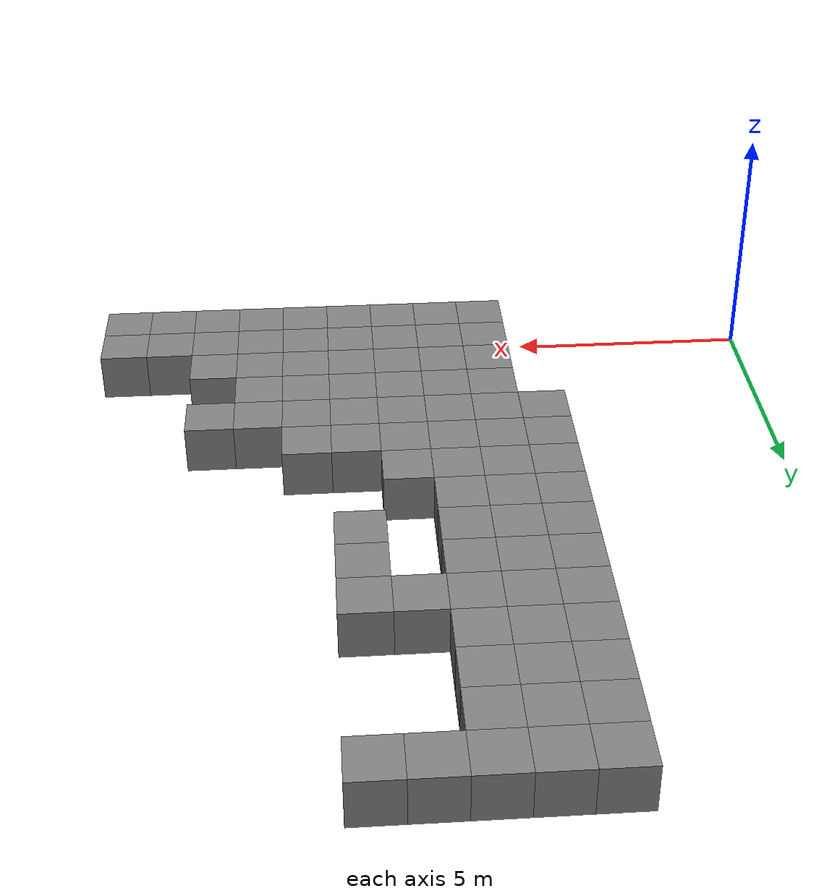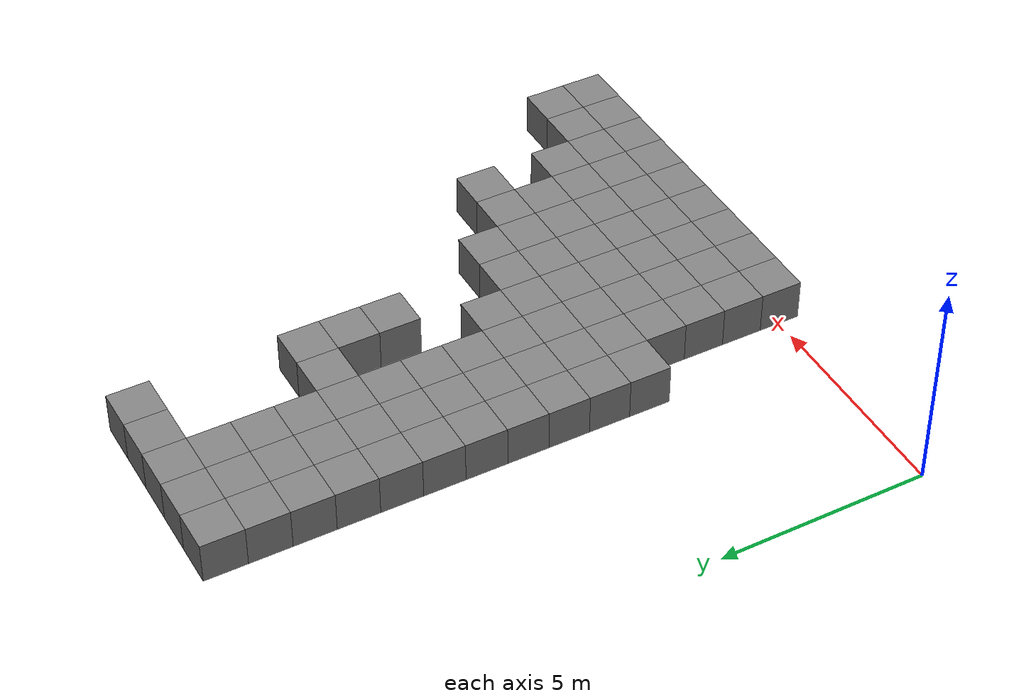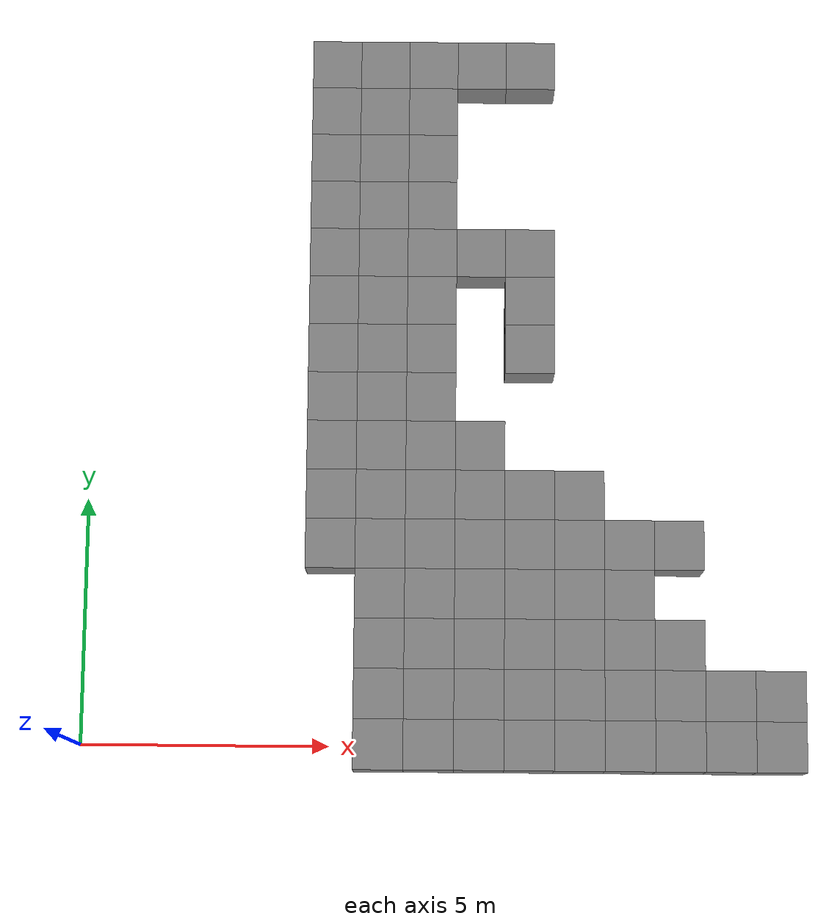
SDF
<sdf version="1.6">
 <world name="default">
  <model name="block_|5-4|">
   <static>true</static>
   <link name="link">
    <pose>5 4 0.5 0 0 0</pose>
    <collision name="collision"><geometry><box><size>1 1 1</size></box></geometry></collision>
    <visual name="visual">
     <geometry><box><size>1 1 1</size></box></geometry>
     <material><ambient>0.5 0.5 0.5 1</ambient></material>
    </visual>
   </link>
  </model>
  <model name="block_|5-5|">
   <static>true</static>
   <link name="link">
    <pose>5 5 0.5 0 0 0</pose>
    <collision name="collision"><geometry><box><size>1 1 1</size></box></geometry></collision>
    <visual name="visual">
     <geometry><box><size>1 1 1</size></box></geometry>
     <material><ambient>0.5 0.5 0.5 1</ambient></material>
    </visual>
   </link>
  </model>
  <model name="block_|5-6|">
   <static>true</static>
   <link name="link">
    <pose>5 6 0.5 0 0 0</pose>
    <collision name="collision"><geometry><box><size>1 1 1</size></box></geometry></collision>
    <visual name="visual">
     <geometry><box><size>1 1 1</size></box></geometry>
     <material><ambient>0.5 0.5 0.5 1</ambient></material>
    </visual>
   </link>
  </model>
  <model name="block_|5-7|">
   <static>true</static>
   <link name="link">
    <pose>5 7 0.5 0 0 0</pose>
    <collision name="collision"><geometry><box><size>1 1 1</size></box></geometry></collision>
    <visual name="visual">
     <geometry><box><size>1 1 1</size></box></geometry>
     <material><ambient>0.5 0.5 0.5 1</ambient></material>
    </visual>
   </link>
  </model>
  <model name="block_|5-8|">
   <static>true</static>
   <link name="link">
    <pose>5 8 0.5 0 0 0</pose>
    <collision name="collision"><geometry><box><size>1 1 1</size></box></geometry></collision>
    <visual name="visual">
     <geometry><box><size>1 1 1</size></box></geometry>
     <material><ambient>0.5 0.5 0.5 1</ambient></material>
    </visual>
   </link>
  </model>
  <model name="block_|5-9|">
   <static>true</static>
   <link name="link">
    <pose>5 9 0.5 0 0 0</pose>
    <collision name="collision"><geometry><box><size>1 1 1</size></box></geometry></collision>
    <visual name="visual">
     <geometry><box><size>1 1 1</size></box></geometry>
     <material><ambient>0.5 0.5 0.5 1</ambient></material>
    </visual>
   </link>
  </model>
  <model name="block_|5-10|">
   <static>true</static>
   <link name="link">
    <pose>5 10 0.5 0 0 0</pose>
    <collision name="collision"><geometry><box><size>1 1 1</size></box></geometry></collision>
    <visual name="visual">
     <geometry><box><size>1 1 1</size></box></geometry>
     <material><ambient>0.5 0.5 0.5 1</ambient></material>
    </visual>
   </link>
  </model>
  <model name="block_|5-11|">
   <static>true</static>
   <link name="link">
    <pose>5 11 0.5 0 0 0</pose>
    <collision name="collision"><geometry><box><size>1 1 1</size></box></geometry></collision>
    <visual name="visual">
     <geometry><box><size>1 1 1</size></box></geometry>
     <material><ambient>0.5 0.5 0.5 1</ambient></material>
    </visual>
   </link>
  </model>
  <model name="block_|5-12|">
   <static>true</static>
   <link name="link">
    <pose>5 12 0.5 0 0 0</pose>
    <collision name="collision"><geometry><box><size>1 1 1</size></box></geometry></collision>
    <visual name="visual">
     <geometry><box><size>1 1 1</size></box></geometry>
     <material><ambient>0.5 0.5 0.5 1</ambient></material>
    </visual>
   </link>
  </model>
  <model name="block_|5-13|">
   <static>true</static>
   <link name="link">
    <pose>5 13 0.5 0 0 0</pose>
    <collision name="collision"><geometry><box><size>1 1 1</size></box></geometry></collision>
    <visual name="visual">
     <geometry><box><size>1 1 1</size></box></geometry>
     <material><ambient>0.5 0.5 0.5 1</ambient></material>
    </visual>
   </link>
  </model>
  <model name="block_|5-14|">
   <static>true</static>
   <link name="link">
    <pose>5 14 0.5 0 0 0</pose>
    <collision name="collision"><geometry><box><size>1 1 1</size></box></geometry></collision>
    <visual name="visual">
     <geometry><box><size>1 1 1</size></box></geometry>
     <material><ambient>0.5 0.5 0.5 1</ambient></material>
    </visual>
   </link>
  </model>
  <model name="block_|6-0|">
   <static>true</static>
   <link name="link">
    <pose>6 0 0.5 0 0 0</pose>
    <collision name="collision"><geometry><box><size>1 1 1</size></box></geometry></collision>
    <visual name="visual">
     <geometry><box><size>1 1 1</size></box></geometry>
     <material><ambient>0.5 0.5 0.5 1</ambient></material>
    </visual>
   </link>
  </model>
  <model name="block_|6-1|">
   <static>true</static>
   <link name="link">
    <pose>6 1 0.5 0 0 0</pose>
    <collision name="collision"><geometry><box><size>1 1 1</size></box></geometry></collision>
    <visual name="visual">
     <geometry><box><size>1 1 1</size></box></geometry>
     <material><ambient>0.5 0.5 0.5 1</ambient></material>
    </visual>
   </link>
  </model>
  <model name="block_|6-2|">
   <static>true</static>
   <link name="link">
    <pose>6 2 0.5 0 0 0</pose>
    <collision name="collision"><geometry><box><size>1 1 1</size></box></geometry></collision>
    <visual name="visual">
     <geometry><box><size>1 1 1</size></box></geometry>
     <material><ambient>0.5 0.5 0.5 1</ambient></material>
    </visual>
   </link>
  </model>
  <model name="block_|6-3|">
   <static>true</static>
   <link name="link">
    <pose>6 3 0.5 0 0 0</pose>
    <collision name="collision"><geometry><box><size>1 1 1</size></box></geometry></collision>
    <visual name="visual">
     <geometry><box><size>1 1 1</size></box></geometry>
     <material><ambient>0.5 0.5 0.5 1</ambient></material>
    </visual>
   </link>
  </model>
  <model name="block_|6-4|">
   <static>true</static>
   <link name="link">
    <pose>6 4 0.5 0 0 0</pose>
    <collision name="collision"><geometry><box><size>1 1 1</size></box></geometry></collision>
    <visual name="visual">
     <geometry><box><size>1 1 1</size></box></geometry>
     <material><ambient>0.5 0.5 0.5 1</ambient></material>
    </visual>
   </link>
  </model>
  <model name="block_|6-5|">
   <static>true</static>
   <link name="link">
    <pose>6 5 0.5 0 0 0</pose>
    <collision name="collision"><geometry><box><size>1 1 1</size></box></geometry></collision>
    <visual name="visual">
     <geometry><box><size>1 1 1</size></box></geometry>
     <material><ambient>0.5 0.5 0.5 1</ambient></material>
    </visual>
   </link>
  </model>
  <model name="block_|6-6|">
   <static>true</static>
   <link name="link">
    <pose>6 6 0.5 0 0 0</pose>
    <collision name="collision"><geometry><box><size>1 1 1</size></box></geometry></collision>
    <visual name="visual">
     <geometry><box><size>1 1 1</size></box></geometry>
     <material><ambient>0.5 0.5 0.5 1</ambient></material>
    </visual>
   </link>
  </model>
  <model name="block_|6-7|">
   <static>true</static>
   <link name="link">
    <pose>6 7 0.5 0 0 0</pose>
    <collision name="collision"><geometry><box><size>1 1 1</size></box></geometry></collision>
    <visual name="visual">
     <geometry><box><size>1 1 1</size></box></geometry>
     <material><ambient>0.5 0.5 0.5 1</ambient></material>
    </visual>
   </link>
  </model>
  <model name="block_|6-8|">
   <static>true</static>
   <link name="link">
    <pose>6 8 0.5 0 0 0</pose>
    <collision name="collision"><geometry><box><size>1 1 1</size></box></geometry></collision>
    <visual name="visual">
     <geometry><box><size>1 1 1</size></box></geometry>
     <material><ambient>0.5 0.5 0.5 1</ambient></material>
    </visual>
   </link>
  </model>
  <model name="block_|6-9|">
   <static>true</static>
   <link name="link">
    <pose>6 9 0.5 0 0 0</pose>
    <collision name="collision"><geometry><box><size>1 1 1</size></box></geometry></collision>
    <visual name="visual">
     <geometry><box><size>1 1 1</size></box></geometry>
     <material><ambient>0.5 0.5 0.5 1</ambient></material>
    </visual>
   </link>
  </model>
  <model name="block_|6-10|">
   <static>true</static>
   <link name="link">
    <pose>6 10 0.5 0 0 0</pose>
    <collision name="collision"><geometry><box><size>1 1 1</size></box></geometry></collision>
    <visual name="visual">
     <geometry><box><size>1 1 1</size></box></geometry>
     <material><ambient>0.5 0.5 0.5 1</ambient></material>
    </visual>
   </link>
  </model>
  <model name="block_|6-11|">
   <static>true</static>
   <link name="link">
    <pose>6 11 0.5 0 0 0</pose>
    <collision name="collision"><geometry><box><size>1 1 1</size></box></geometry></collision>
    <visual name="visual">
     <geometry><box><size>1 1 1</size></box></geometry>
     <material><ambient>0.5 0.5 0.5 1</ambient></material>
    </visual>
   </link>
  </model>
  <model name="block_|6-12|">
   <static>true</static>
   <link name="link">
    <pose>6 12 0.5 0 0 0</pose>
    <collision name="collision"><geometry><box><size>1 1 1</size></box></geometry></collision>
    <visual name="visual">
     <geometry><box><size>1 1 1</size></box></geometry>
     <material><ambient>0.5 0.5 0.5 1</ambient></material>
    </visual>
   </link>
  </model>
  <model name="block_|6-13|">
   <static>true</static>
   <link name="link">
    <pose>6 13 0.5 0 0 0</pose>
    <collision name="collision"><geometry><box><size>1 1 1</size></box></geometry></collision>
    <visual name="visual">
     <geometry><box><size>1 1 1</size></box></geometry>
     <material><ambient>0.5 0.5 0.5 1</ambient></material>
    </visual>
   </link>
  </model>
  <model name="block_|6-14|">
   <static>true</static>
   <link name="link">
    <pose>6 14 0.5 0 0 0</pose>
    <collision name="collision"><geometry><box><size>1 1 1</size></box></geometry></collision>
    <visual name="visual">
     <geometry><box><size>1 1 1</size></box></geometry>
     <material><ambient>0.5 0.5 0.5 1</ambient></material>
    </visual>
   </link>
  </model>
  <model name="block_|7-0|">
   <static>true</static>
   <link name="link">
    <pose>7 0 0.5 0 0 0</pose>
    <collision name="collision"><geometry><box><size>1 1 1</size></box></geometry></collision>
    <visual name="visual">
     <geometry><box><size>1 1 1</size></box></geometry>
     <material><ambient>0.5 0.5 0.5 1</ambient></material>
    </visual>
   </link>
  </model>
  <model name="block_|7-1|">
   <static>true</static>
   <link name="link">
    <pose>7 1 0.5 0 0 0</pose>
    <collision name="collision"><geometry><box><size>1 1 1</size></box></geometry></collision>
    <visual name="visual">
     <geometry><box><size>1 1 1</size></box></geometry>
     <material><ambient>0.5 0.5 0.5 1</ambient></material>
    </visual>
   </link>
  </model>
  <model name="block_|7-2|">
   <static>true</static>
   <link name="link">
    <pose>7 2 0.5 0 0 0</pose>
    <collision name="collision"><geometry><box><size>1 1 1</size></box></geometry></collision>
    <visual name="visual">
     <geometry><box><size>1 1 1</size></box></geometry>
     <material><ambient>0.5 0.5 0.5 1</ambient></material>
    </visual>
   </link>
  </model>
  <model name="block_|7-3|">
   <static>true</static>
   <link name="link">
    <pose>7 3 0.5 0 0 0</pose>
    <collision name="collision"><geometry><box><size>1 1 1</size></box></geometry></collision>
    <visual name="visual">
     <geometry><box><size>1 1 1</size></box></geometry>
     <material><ambient>0.5 0.5 0.5 1</ambient></material>
    </visual>
   </link>
  </model>
  <model name="block_|7-4|">
   <static>true</static>
   <link name="link">
    <pose>7 4 0.5 0 0 0</pose>
    <collision name="collision"><geometry><box><size>1 1 1</size></box></geometry></collision>
    <visual name="visual">
     <geometry><box><size>1 1 1</size></box></geometry>
     <material><ambient>0.5 0.5 0.5 1</ambient></material>
    </visual>
   </link>
  </model>
  <model name="block_|7-5|">
   <static>true</static>
   <link name="link">
    <pose>7 5 0.5 0 0 0</pose>
    <collision name="collision"><geometry><box><size>1 1 1</size></box></geometry></collision>
    <visual name="visual">
     <geometry><box><size>1 1 1</size></box></geometry>
     <material><ambient>0.5 0.5 0.5 1</ambient></material>
    </visual>
   </link>
  </model>
  <model name="block_|7-6|">
   <static>true</static>
   <link name="link">
    <pose>7 6 0.5 0 0 0</pose>
    <collision name="collision"><geometry><box><size>1 1 1</size></box></geometry></collision>
    <visual name="visual">
     <geometry><box><size>1 1 1</size></box></geometry>
     <material><ambient>0.5 0.5 0.5 1</ambient></material>
    </visual>
   </link>
  </model>
  <model name="block_|7-7|">
   <static>true</static>
   <link name="link">
    <pose>7 7 0.5 0 0 0</pose>
    <collision name="collision"><geometry><box><size>1 1 1</size></box></geometry></collision>
    <visual name="visual">
     <geometry><box><size>1 1 1</size></box></geometry>
     <material><ambient>0.5 0.5 0.5 1</ambient></material>
    </visual>
   </link>
  </model>
  <model name="block_|7-8|">
   <static>true</static>
   <link name="link">
    <pose>7 8 0.5 0 0 0</pose>
    <collision name="collision"><geometry><box><size>1 1 1</size></box></geometry></collision>
    <visual name="visual">
     <geometry><box><size>1 1 1</size></box></geometry>
     <material><ambient>0.5 0.5 0.5 1</ambient></material>
    </visual>
   </link>
  </model>
  <model name="block_|7-9|">
   <static>true</static>
   <link name="link">
    <pose>7 9 0.5 0 0 0</pose>
    <collision name="collision"><geometry><box><size>1 1 1</size></box></geometry></collision>
    <visual name="visual">
     <geometry><box><size>1 1 1</size></box></geometry>
     <material><ambient>0.5 0.5 0.5 1</ambient></material>
    </visual>
   </link>
  </model>
  <model name="block_|7-10|">
   <static>true</static>
   <link name="link">
    <pose>7 10 0.5 0 0 0</pose>
    <collision name="collision"><geometry><box><size>1 1 1</size></box></geometry></collision>
    <visual name="visual">
     <geometry><box><size>1 1 1</size></box></geometry>
     <material><ambient>0.5 0.5 0.5 1</ambient></material>
    </visual>
   </link>
  </model>
  <model name="block_|7-11|">
   <static>true</static>
   <link name="link">
    <pose>7 11 0.5 0 0 0</pose>
    <collision name="collision"><geometry><box><size>1 1 1</size></box></geometry></collision>
    <visual name="visual">
     <geometry><box><size>1 1 1</size></box></geometry>
     <material><ambient>0.5 0.5 0.5 1</ambient></material>
    </visual>
   </link>
  </model>
  <model name="block_|7-12|">
   <static>true</static>
   <link name="link">
    <pose>7 12 0.5 0 0 0</pose>
    <collision name="collision"><geometry><box><size>1 1 1</size></box></geometry></collision>
    <visual name="visual">
     <geometry><box><size>1 1 1</size></box></geometry>
     <material><ambient>0.5 0.5 0.5 1</ambient></material>
    </visual>
   </link>
  </model>
  <model name="block_|7-13|">
   <static>true</static>
   <link name="link">
    <pose>7 13 0.5 0 0 0</pose>
    <collision name="collision"><geometry><box><size>1 1 1</size></box></geometry></collision>
    <visual name="visual">
     <geometry><box><size>1 1 1</size></box></geometry>
     <material><ambient>0.5 0.5 0.5 1</ambient></material>
    </visual>
   </link>
  </model>
  <model name="block_|7-14|">
   <static>true</static>
   <link name="link">
    <pose>7 14 0.5 0 0 0</pose>
    <collision name="collision"><geometry><box><size>1 1 1</size></box></geometry></collision>
    <visual name="visual">
     <geometry><box><size>1 1 1</size></box></geometry>
     <material><ambient>0.5 0.5 0.5 1</ambient></material>
    </visual>
   </link>
  </model>
  <model name="block_|8-0|">
   <static>true</static>
   <link name="link">
    <pose>8 0 0.5 0 0 0</pose>
    <collision name="collision"><geometry><box><size>1 1 1</size></box></geometry></collision>
    <visual name="visual">
     <geometry><box><size>1 1 1</size></box></geometry>
     <material><ambient>0.5 0.5 0.5 1</ambient></material>
    </visual>
   </link>
  </model>
  <model name="block_|8-1|">
   <static>true</static>
   <link name="link">
    <pose>8 1 0.5 0 0 0</pose>
    <collision name="collision"><geometry><box><size>1 1 1</size></box></geometry></collision>
    <visual name="visual">
     <geometry><box><size>1 1 1</size></box></geometry>
     <material><ambient>0.5 0.5 0.5 1</ambient></material>
    </visual>
   </link>
  </model>
  <model name="block_|8-2|">
   <static>true</static>
   <link name="link">
    <pose>8 2 0.5 0 0 0</pose>
    <collision name="collision"><geometry><box><size>1 1 1</size></box></geometry></collision>
    <visual name="visual">
     <geometry><box><size>1 1 1</size></box></geometry>
     <material><ambient>0.5 0.5 0.5 1</ambient></material>
    </visual>
   </link>
  </model>
  <model name="block_|8-3|">
   <static>true</static>
   <link name="link">
    <pose>8 3 0.5 0 0 0</pose>
    <collision name="collision"><geometry><box><size>1 1 1</size></box></geometry></collision>
    <visual name="visual">
     <geometry><box><size>1 1 1</size></box></geometry>
     <material><ambient>0.5 0.5 0.5 1</ambient></material>
    </visual>
   </link>
  </model>
  <model name="block_|8-4|">
   <static>true</static>
   <link name="link">
    <pose>8 4 0.5 0 0 0</pose>
    <collision name="collision"><geometry><box><size>1 1 1</size></box></geometry></collision>
    <visual name="visual">
     <geometry><box><size>1 1 1</size></box></geometry>
     <material><ambient>0.5 0.5 0.5 1</ambient></material>
    </visual>
   </link>
  </model>
  <model name="block_|8-5|">
   <static>true</static>
   <link name="link">
    <pose>8 5 0.5 0 0 0</pose>
    <collision name="collision"><geometry><box><size>1 1 1</size></box></geometry></collision>
    <visual name="visual">
     <geometry><box><size>1 1 1</size></box></geometry>
     <material><ambient>0.5 0.5 0.5 1</ambient></material>
    </visual>
   </link>
  </model>
  <model name="block_|8-6|">
   <static>true</static>
   <link name="link">
    <pose>8 6 0.5 0 0 0</pose>
    <collision name="collision"><geometry><box><size>1 1 1</size></box></geometry></collision>
    <visual name="visual">
     <geometry><box><size>1 1 1</size></box></geometry>
     <material><ambient>0.5 0.5 0.5 1</ambient></material>
    </visual>
   </link>
  </model>
  <model name="block_|8-10|">
   <static>true</static>
   <link name="link">
    <pose>8 10 0.5 0 0 0</pose>
    <collision name="collision"><geometry><box><size>1 1 1</size></box></geometry></collision>
    <visual name="visual">
     <geometry><box><size>1 1 1</size></box></geometry>
     <material><ambient>0.5 0.5 0.5 1</ambient></material>
    </visual>
   </link>
  </model>
  <model name="block_|8-14|">
   <static>true</static>
   <link name="link">
    <pose>8 14 0.5 0 0 0</pose>
    <collision name="collision"><geometry><box><size>1 1 1</size></box></geometry></collision>
    <visual name="visual">
     <geometry><box><size>1 1 1</size></box></geometry>
     <material><ambient>0.5 0.5 0.5 1</ambient></material>
    </visual>
   </link>
  </model>
  <model name="block_|9-0|">
   <static>true</static>
   <link name="link">
    <pose>9 0 0.5 0 0 0</pose>
    <collision name="collision"><geometry><box><size>1 1 1</size></box></geometry></collision>
    <visual name="visual">
     <geometry><box><size>1 1 1</size></box></geometry>
     <material><ambient>0.5 0.5 0.5 1</ambient></material>
    </visual>
   </link>
  </model>
  <model name="block_|9-1|">
   <static>true</static>
   <link name="link">
    <pose>9 1 0.5 0 0 0</pose>
    <collision name="collision"><geometry><box><size>1 1 1</size></box></geometry></collision>
    <visual name="visual">
     <geometry><box><size>1 1 1</size></box></geometry>
     <material><ambient>0.5 0.5 0.5 1</ambient></material>
    </visual>
   </link>
  </model>
  <model name="block_|9-2|">
   <static>true</static>
   <link name="link">
    <pose>9 2 0.5 0 0 0</pose>
    <collision name="collision"><geometry><box><size>1 1 1</size></box></geometry></collision>
    <visual name="visual">
     <geometry><box><size>1 1 1</size></box></geometry>
     <material><ambient>0.5 0.5 0.5 1</ambient></material>
    </visual>
   </link>
  </model>
  <model name="block_|9-3|">
   <static>true</static>
   <link name="link">
    <pose>9 3 0.5 0 0 0</pose>
    <collision name="collision"><geometry><box><size>1 1 1</size></box></geometry></collision>
    <visual name="visual">
     <geometry><box><size>1 1 1</size></box></geometry>
     <material><ambient>0.5 0.5 0.5 1</ambient></material>
    </visual>
   </link>
  </model>
  <model name="block_|9-4|">
   <static>true</static>
   <link name="link">
    <pose>9 4 0.5 0 0 0</pose>
    <collision name="collision"><geometry><box><size>1 1 1</size></box></geometry></collision>
    <visual name="visual">
     <geometry><box><size>1 1 1</size></box></geometry>
     <material><ambient>0.5 0.5 0.5 1</ambient></material>
    </visual>
   </link>
  </model>
  <model name="block_|9-5|">
   <static>true</static>
   <link name="link">
    <pose>9 5 0.5 0 0 0</pose>
    <collision name="collision"><geometry><box><size>1 1 1</size></box></geometry></collision>
    <visual name="visual">
     <geometry><box><size>1 1 1</size></box></geometry>
     <material><ambient>0.5 0.5 0.5 1</ambient></material>
    </visual>
   </link>
  </model>
  <model name="block_|9-8|">
   <static>true</static>
   <link name="link">
    <pose>9 8 0.5 0 0 0</pose>
    <collision name="collision"><geometry><box><size>1 1 1</size></box></geometry></collision>
    <visual name="visual">
     <geometry><box><size>1 1 1</size></box></geometry>
     <material><ambient>0.5 0.5 0.5 1</ambient></material>
    </visual>
   </link>
  </model>
  <model name="block_|9-9|">
   <static>true</static>
   <link name="link">
    <pose>9 9 0.5 0 0 0</pose>
    <collision name="collision"><geometry><box><size>1 1 1</size></box></geometry></collision>
    <visual name="visual">
     <geometry><box><size>1 1 1</size></box></geometry>
     <material><ambient>0.5 0.5 0.5 1</ambient></material>
    </visual>
   </link>
  </model>
  <model name="block_|9-10|">
   <static>true</static>
   <link name="link">
    <pose>9 10 0.5 0 0 0</pose>
    <collision name="collision"><geometry><box><size>1 1 1</size></box></geometry></collision>
    <visual name="visual">
     <geometry><box><size>1 1 1</size></box></geometry>
     <material><ambient>0.5 0.5 0.5 1</ambient></material>
    </visual>
   </link>
  </model>
  <model name="block_|9-14|">
   <static>true</static>
   <link name="link">
    <pose>9 14 0.5 0 0 0</pose>
    <collision name="collision"><geometry><box><size>1 1 1</size></box></geometry></collision>
    <visual name="visual">
     <geometry><box><size>1 1 1</size></box></geometry>
     <material><ambient>0.5 0.5 0.5 1</ambient></material>
    </visual>
   </link>
  </model>
  <model name="block_|10-0|">
   <static>true</static>
   <link name="link">
    <pose>10 0 0.5 0 0 0</pose>
    <collision name="collision"><geometry><box><size>1 1 1</size></box></geometry></collision>
    <visual name="visual">
     <geometry><box><size>1 1 1</size></box></geometry>
     <material><ambient>0.5 0.5 0.5 1</ambient></material>
    </visual>
   </link>
  </model>
  <model name="block_|10-1|">
   <static>true</static>
   <link name="link">
    <pose>10 1 0.5 0 0 0</pose>
    <collision name="collision"><geometry><box><size>1 1 1</size></box></geometry></collision>
    <visual name="visual">
     <geometry><box><size>1 1 1</size></box></geometry>
     <material><ambient>0.5 0.5 0.5 1</ambient></material>
    </visual>
   </link>
  </model>
  <model name="block_|10-2|">
   <static>true</static>
   <link name="link">
    <pose>10 2 0.5 0 0 0</pose>
    <collision name="collision"><geometry><box><size>1 1 1</size></box></geometry></collision>
    <visual name="visual">
     <geometry><box><size>1 1 1</size></box></geometry>
     <material><ambient>0.5 0.5 0.5 1</ambient></material>
    </visual>
   </link>
  </model>
  <model name="block_|10-3|">
   <static>true</static>
   <link name="link">
    <pose>10 3 0.5 0 0 0</pose>
    <collision name="collision"><geometry><box><size>1 1 1</size></box></geometry></collision>
    <visual name="visual">
     <geometry><box><size>1 1 1</size></box></geometry>
     <material><ambient>0.5 0.5 0.5 1</ambient></material>
    </visual>
   </link>
  </model>
  <model name="block_|10-4|">
   <static>true</static>
   <link name="link">
    <pose>10 4 0.5 0 0 0</pose>
    <collision name="collision"><geometry><box><size>1 1 1</size></box></geometry></collision>
    <visual name="visual">
     <geometry><box><size>1 1 1</size></box></geometry>
     <material><ambient>0.5 0.5 0.5 1</ambient></material>
    </visual>
   </link>
  </model>
  <model name="block_|10-5|">
   <static>true</static>
   <link name="link">
    <pose>10 5 0.5 0 0 0</pose>
    <collision name="collision"><geometry><box><size>1 1 1</size></box></geometry></collision>
    <visual name="visual">
     <geometry><box><size>1 1 1</size></box></geometry>
     <material><ambient>0.5 0.5 0.5 1</ambient></material>
    </visual>
   </link>
  </model>
  <model name="block_|11-0|">
   <static>true</static>
   <link name="link">
    <pose>11 0 0.5 0 0 0</pose>
    <collision name="collision"><geometry><box><size>1 1 1</size></box></geometry></collision>
    <visual name="visual">
     <geometry><box><size>1 1 1</size></box></geometry>
     <material><ambient>0.5 0.5 0.5 1</ambient></material>
    </visual>
   </link>
  </model>
  <model name="block_|11-1|">
   <static>true</static>
   <link name="link">
    <pose>11 1 0.5 0 0 0</pose>
    <collision name="collision"><geometry><box><size>1 1 1</size></box></geometry></collision>
    <visual name="visual">
     <geometry><box><size>1 1 1</size></box></geometry>
     <material><ambient>0.5 0.5 0.5 1</ambient></material>
    </visual>
   </link>
  </model>
  <model name="block_|11-2|">
   <static>true</static>
   <link name="link">
    <pose>11 2 0.5 0 0 0</pose>
    <collision name="collision"><geometry><box><size>1 1 1</size></box></geometry></collision>
    <visual name="visual">
     <geometry><box><size>1 1 1</size></box></geometry>
     <material><ambient>0.5 0.5 0.5 1</ambient></material>
    </visual>
   </link>
  </model>
  <model name="block_|11-3|">
   <static>true</static>
   <link name="link">
    <pose>11 3 0.5 0 0 0</pose>
    <collision name="collision"><geometry><box><size>1 1 1</size></box></geometry></collision>
    <visual name="visual">
     <geometry><box><size>1 1 1</size></box></geometry>
     <material><ambient>0.5 0.5 0.5 1</ambient></material>
    </visual>
   </link>
  </model>
  <model name="block_|11-4|">
   <static>true</static>
   <link name="link">
    <pose>11 4 0.5 0 0 0</pose>
    <collision name="collision"><geometry><box><size>1 1 1</size></box></geometry></collision>
    <visual name="visual">
     <geometry><box><size>1 1 1</size></box></geometry>
     <material><ambient>0.5 0.5 0.5 1</ambient></material>
    </visual>
   </link>
  </model>
  <model name="block_|12-0|">
   <static>true</static>
   <link name="link">
    <pose>12 0 0.5 0 0 0</pose>
    <collision name="collision"><geometry><box><size>1 1 1</size></box></geometry></collision>
    <visual name="visual">
     <geometry><box><size>1 1 1</size></box></geometry>
     <material><ambient>0.5 0.5 0.5 1</ambient></material>
    </visual>
   </link>
  </model>
  <model name="block_|12-1|">
   <static>true</static>
   <link name="link">
    <pose>12 1 0.5 0 0 0</pose>
    <collision name="collision"><geometry><box><size>1 1 1</size></box></geometry></collision>
    <visual name="visual">
     <geometry><box><size>1 1 1</size></box></geometry>
     <material><ambient>0.5 0.5 0.5 1</ambient></material>
    </visual>
   </link>
  </model>
  <model name="block_|12-2|">
   <static>true</static>
   <link name="link">
    <pose>12 2 0.5 0 0 0</pose>
    <collision name="collision"><geometry><box><size>1 1 1</size></box></geometry></collision>
    <visual name="visual">
     <geometry><box><size>1 1 1</size></box></geometry>
     <material><ambient>0.5 0.5 0.5 1</ambient></material>
    </visual>
   </link>
  </model>
  <model name="block_|12-4|">
   <static>true</static>
   <link name="link">
    <pose>12 4 0.5 0 0 0</pose>
    <collision name="collision"><geometry><box><size>1 1 1</size></box></geometry></collision>
    <visual name="visual">
     <geometry><box><size>1 1 1</size></box></geometry>
     <material><ambient>0.5 0.5 0.5 1</ambient></material>
    </visual>
   </link>
  </model>
  <model name="block_|13-0|">
   <static>true</static>
   <link name="link">
    <pose>13 0 0.5 0 0 0</pose>
    <collision name="collision"><geometry><box><size>1 1 1</size></box></geometry></collision>
    <visual name="visual">
     <geometry><box><size>1 1 1</size></box></geometry>
     <material><ambient>0.5 0.5 0.5 1</ambient></material>
    </visual>
   </link>
  </model>
  <model name="block_|13-1|">
   <static>true</static>
   <link name="link">
    <pose>13 1 0.5 0 0 0</pose>
    <collision name="collision"><geometry><box><size>1 1 1</size></box></geometry></collision>
    <visual name="visual">
     <geometry><box><size>1 1 1</size></box></geometry>
     <material><ambient>0.5 0.5 0.5 1</ambient></material>
    </visual>
   </link>
  </model>
  <model name="block_|14-0|">
   <static>true</static>
   <link name="link">
    <pose>14 0 0.5 0 0 0</pose>
    <collision name="collision"><geometry><box><size>1 1 1</size></box></geometry></collision>
    <visual name="visual">
     <geometry><box><size>1 1 1</size></box></geometry>
     <material><ambient>0.5 0.5 0.5 1</ambient></material>
    </visual>
   </link>
  </model>
  <model name="block_|14-1|">
   <static>true</static>
   <link name="link">
    <pose>14 1 0.5 0 0 0</pose>
    <collision name="collision"><geometry><box><size>1 1 1</size></box></geometry></collision>
    <visual name="visual">
     <geometry><box><size>1 1 1</size></box></geometry>
     <material><ambient>0.5 0.5 0.5 1</ambient></material>
    </visual>
   </link>
  </model>
 </world>
</sdf>
